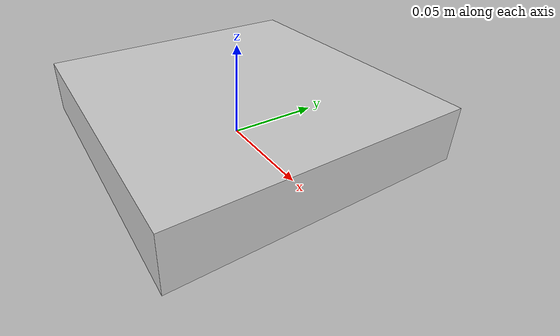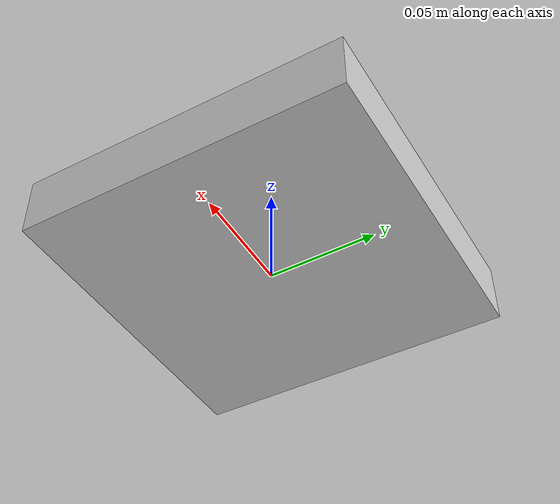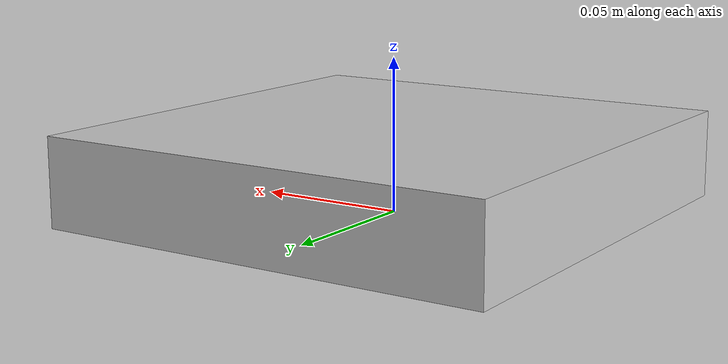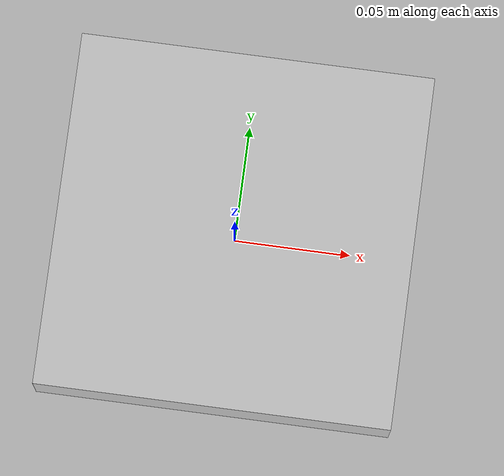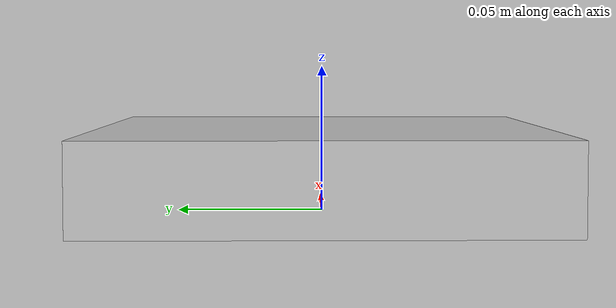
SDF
<?xml version="1.0"?>
<sdf version="1.6">
  <model name="amti_he6x6_force_plate">
    <pose>0 0 0 0 0 0</pose>

    <!--  MOUNT LINK – rigid base, no collision, anchored to world         -->
    <link name="mount">
      <pose>0 0 0 0 0 0</pose>
      <gravity>false</gravity>
      <inertial>
        <mass>1000.0</mass>
        <inertia>
          <ixx>1.0</ixx><iyy>1.0</iyy><izz>1.0</izz>
          <ixy>0.0</ixy><ixz>0.0</ixz><iyz>0.0</iyz>
        </inertia>
      </inertial>
    </link>

    <!--  BODY LINK – the sensing plate                                   -->
    <link name="body">
      <!-- Centre at z = half height = 0.0145 → bottom face z=0, top face z=0.029 -->
      <pose>0 0 0.0145 0 0 0</pose>
      <inertial>
        <mass>0.73</mass>
        <inertia>
          <!-- Solid box inertia: ixx = m*(h²+d²)/12, etc. Approximate values -->
          <ixx>0.0015</ixx>
          <iyy>0.0015</iyy>
          <izz>0.0028</izz>
          <ixy>0.0</ixy><ixz>0.0</ixz><iyz>0.0</iyz>
        </inertia>
      </inertial>

      <collision name="tactile_collision">
        <geometry>
          <box>
            <size>0.152 0.152 0.029</size>
          </box>
        </geometry>
        <!--  Contact parameters copied from working Leptrino sensor  -->
        <surface>
          <contact>
            <ode>
              <kp>50000.0</kp>          <!-- surface stiffness -->
              <kd>100.0</kd>             <!-- damping -->
              <max_vel>0.01</max_vel>
              <min_depth>0.0001</min_depth>
            </ode>
          </contact>
          <friction>
            <ode>
              <mu>0.5</mu>
              <mu2>0.5</mu2>
            </ode>
          </friction>
        </surface>
      </collision>

      <!-- Bounding size for test framework -->
      <sensor_size>0.152 0.152 0.029</sensor_size>
      <!-- shape param: tells test framework this is a box, not a cylinder.
           Without this, equal w=d would be misclassified as cylinder. -->
      <shape>box</shape>

      <visual name="visual">
        <geometry>
          <box>
            <size>0.152 0.152 0.029</size>
          </box>
        </geometry>
        <material>
          <ambient>0.8 0.8 0.8 1</ambient>
          <diffuse>0.8 0.8 0.8 1</diffuse>
        </material>
      </visual>

      <!-- Contact sensor (bumper) – same as Leptrino -->
      <sensor name="tactile_bumper" type="contact">
        <always_on>true</always_on>
        <update_rate>50.0</update_rate>
        <contact><collision>tactile_collision</collision></contact>
        <plugin name="tactile_bumper_plugin" filename="libgazebo_ros_bumper.so">
          <robotNamespace>/amti_he6x6_force_plate</robotNamespace>
          <topicName>bumper_states</topicName>
          <frameName>body</frameName>
        </plugin>
      </sensor>
    </link>

    <joint name="world_fixed" type="fixed">
      <parent>world</parent>
      <child>mount</child>
    </joint>

    <!--  Fixed joint connecting mount to body  -->
    <joint name="ft_joint" type="fixed">
      <parent>mount</parent>
      <child>body</child>
      <!--  Force/torque sensor remains on the joint  -->
      <sensor name="ft_sensor" type="force_torque">
        <always_on>true</always_on>
        <update_rate>1000.0</update_rate>
        <visualize>false</visualize>
        <force_torque>
          <frame>child</frame>
          <measure_direction>child_to_parent</measure_direction>
        </force_torque>
      </sensor>
    </joint>

  </model>
</sdf>
